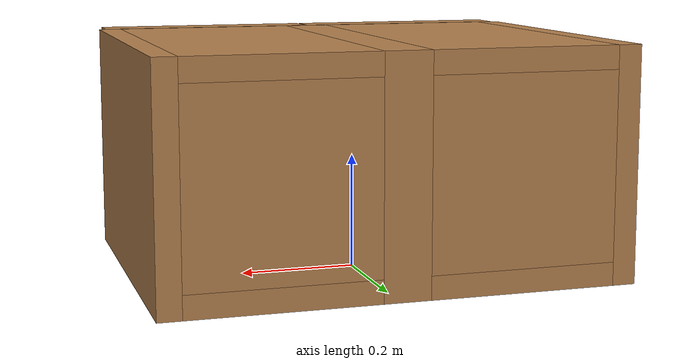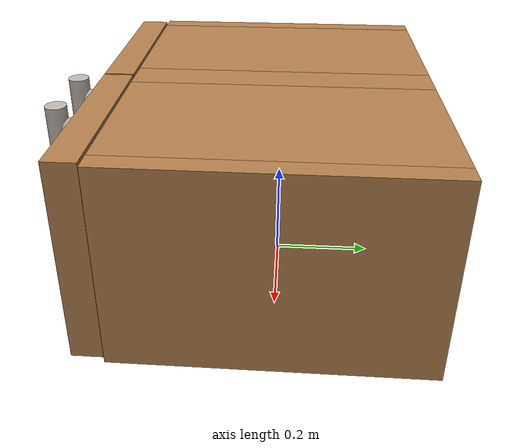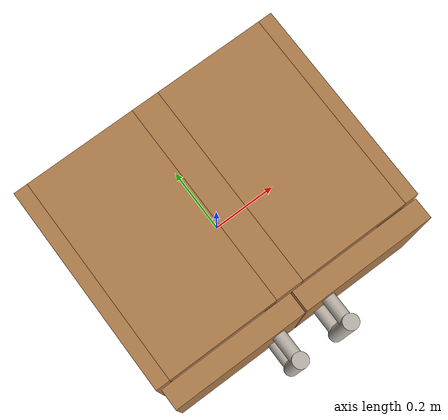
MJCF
<mujoco model="hinge cabinet">
    <compiler inertiafromgeom="auto" inertiagrouprange="1 4" angle="radian"/>

    <asset>
        <texture name="T_hinge_wood" type="cube" height="1" width="1" file="common/textures/wood3.png"/>
        <texture name="T_hinge_metal" type="cube" height="1" width="1" file="common/textures/metal0.png"/>

        <material name="M_hinge_wood" texture="T_hinge_wood" texrepeat="3 3" reflectance="0.7" shininess=".4" texuniform="false"/>
        <material name="M_hinge_metal" texture="T_hinge_metal" texrepeat="3 3" reflectance="0.7" shininess=".4" texuniform="false"/>
        <material name="M_hinge_blue" texture="T_hinge_wood" rgba="1 1 1 1" reflectance="0.7" shininess=".4" texuniform="false"/>
        <material name="hinge_collision_blue" rgba="0.3 0.3 1.0 0.5" shininess="0" specular="0"/>
    </asset>

    <default>
        <default class="hingecabinet">
            <joint damping="2" frictionloss="2" armature=".01" limited="true"/>
            <geom conaffinity="0" contype="0" group="1" material="M_hinge_wood" type="mesh"/>
            <default class="hinge_collision">
                <geom conaffinity="1" condim="3" contype="0" group="4" margin="0.001" material="hinge_collision_blue" solimp=".8 .9 .01" solref=".02 1"/>
            </default>
        </default>
    </default>

    <actuator>
        <position joint="leftdoorhinge" ctrlrange="-1.57 0" name="leftdoorhinge_j" ctrllimited="true" kp="30"/>
        <position joint="rightdoorhinge" ctrlrange="0 1.57" name="rightdoorhinge_j" ctrllimited="true" kp="30"/>
    </actuator>

    <sensor>
        <jointpos name="leftdoorhinge" joint="leftdoorhinge"/>
        <jointpos name="rightdoorhinge" joint="rightdoorhinge"/>
    </sensor>

    <worldbody>
        <body name="hingecab" childclass="hingecabinet">
            <geom material="M_hinge_blue" pos="0 0 0.21" size="0.04 0.3 0.2" type="box"/>
            <geom material="M_hinge_blue" pos="0.38 0 0.21" size="0.02 0.3 0.2" type="box"/>
            <geom material="M_hinge_blue" pos="-0.38 0 0.21" size="0.02 0.3 0.2" type="box"/>
            <geom material="M_hinge_blue" pos="-0.2 0 0.39" size="0.16 0.3 0.02" type="box"/>
            <geom material="M_hinge_blue" pos="-0.2 0 0.03" size="0.16 0.3 0.02" type="box"/>
            <geom material="M_hinge_blue" pos="0.2 0 0.03" size="0.16 0.3 0.02" type="box"/>
            <geom material="M_hinge_blue" pos="0.2 0 0.39" size="0.16 0.3 0.02" type="box"/>
            <geom material="M_hinge_blue" pos="-0.2 0.28 0.21" size="0.16 0.02 0.16" type="box"/>
            <geom material="M_hinge_blue" pos="0.2 0.28 0.21" size="0.16 0.02 0.16" type="box"/>

            <geom class="hinge_collision" size="0.04 0.3 0.2" type="box" mass=".3"/>
            <geom class="hinge_collision" pos="0.38 0 0.21" size="0.02 0.3 0.2" type="box" mass=".2"/>
            <geom class="hinge_collision" pos="-0.38 0 0.21" size="0.02 0.3 0.2" type="box" mass=".2"/>
            <geom class="hinge_collision" pos="-0.2 0 0.39" size="0.16 0.3 0.02" type="box" mass=".2"/>
            <geom class="hinge_collision" pos="-0.2 0 0.03" size="0.16 0.3 0.02" type="box" mass=".2"/>
            <geom class="hinge_collision" pos="0.2 0 0.03" size="0.16 0.3 0.02" type="box" mass=".2"/>
            <geom class="hinge_collision" pos="0.2 0 0.39" size="0.16 0.3 0.02" type="box" mass=".2"/>
            <geom class="hinge_collision" pos="-0.2 0.28 0.21" size="0.16 0.02 0.16" type="box" mass=".2"/>
            <geom class="hinge_collision" pos="0.2 0.28 0.21" size="0.16 0.02 0.16" type="box" mass=".2"/>
            <body name="hingeleftdoor" pos="-0.38 -0.32 0.21">
                <joint axis="0 0 1" name="leftdoorhinge" range="-1.57 0"/>
                <geom material="M_hinge_metal" pos="0.302 -0.128 0" size="0.022 0.16" type="cylinder"/>
                <geom material="M_hinge_metal" pos="0.302 -0.061 0.114" euler="1.57 0 0" size="0.019 0.053 0.02" type="cylinder"/>
                <geom material="M_hinge_metal" pos="0.302 -0.061 -0.114" euler="1.57 0 0" size="0.019 0.053 0.02" type="cylinder"/>
                <geom material="M_hinge_blue" pos="0.184 -.015 0" size="0.193 0.03 0.2" type="box"/>

                <geom class="hinge_collision" pos="0.184 -.015 0" size="0.193 0.03 0.2" type="box" mass=".2"/>
                <geom class="hinge_collision" pos="0.302 -0.128 0" size="0.022 0.16" type="cylinder" mass=".1"/>
                <geom class="hinge_collision" pos="0.302 -0.061 0.114" euler="1.57 0 0" size="0.019 0.053 0.02" type="cylinder" mass=".02"/>
                <geom class="hinge_collision" pos="0.302 -0.061 -0.114" euler="1.57 0 0" size="0.019 0.053 0.02" type="cylinder" mass=".02"/>
                <site type="sphere" name="leftdoor_site" pos="0.302 -0.128 0" size=".01" group="3" rgba="1 0 0 1"/>
            </body>
            <body name="hingerightdoor" pos="0.38 -0.32 0.21">
                <joint axis="0 0 1" name="rightdoorhinge" range="0 1.57"/>
                <geom material="M_hinge_blue" pos="-0.185 -.015 0" size="0.193 0.03 0.2" type="box"/>
                <geom material="M_hinge_metal" pos="-0.302 -0.128 0" size="0.022 0.16" type="cylinder"/>
                <geom material="M_hinge_metal" pos="-0.302 -0.061 -0.114" euler="1.57 0 0" size="0.019 0.053 0.02" type="cylinder"/>
                <geom material="M_hinge_metal" pos="-0.302 -0.061 0.114" euler="1.57 0 0" size="0.019 0.053 0.02" type="cylinder"/>

                <geom class="hinge_collision" pos="-0.302 -0.128 0" size="0.022 0.16" type="cylinder" mass=".1"/>
                <geom class="hinge_collision" pos="-0.302 -0.061 -0.114" euler="1.57 0 0" size="0.019 0.053 0.02" type="cylinder" mass=".02"/>
                <geom class="hinge_collision" pos="-0.302 -0.061 0.114" euler="1.57 0 0" size="0.019 0.053 0.02" type="cylinder" mass=".02"/>
                <geom class="hinge_collision" pos="-0.185 -.015 0" size="0.193 0.03 0.2" type="box" mass=".2"/>
                <site type="sphere" name="rightdoor_site" pos="-0.302 -0.128 0" size=".01" group="3" rgba="0 1 0 1"/>
            </body>
        </body>
    </worldbody>

</mujoco>
